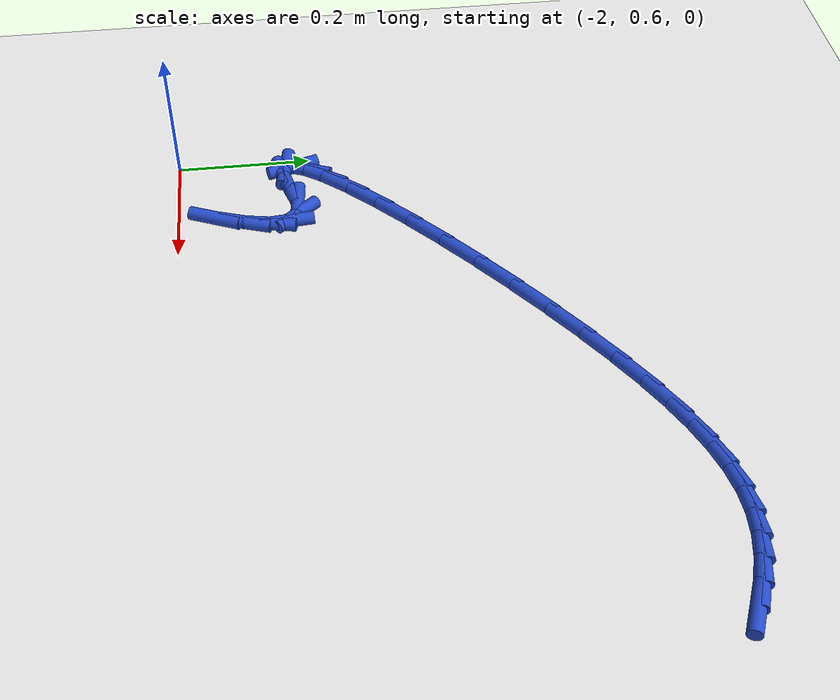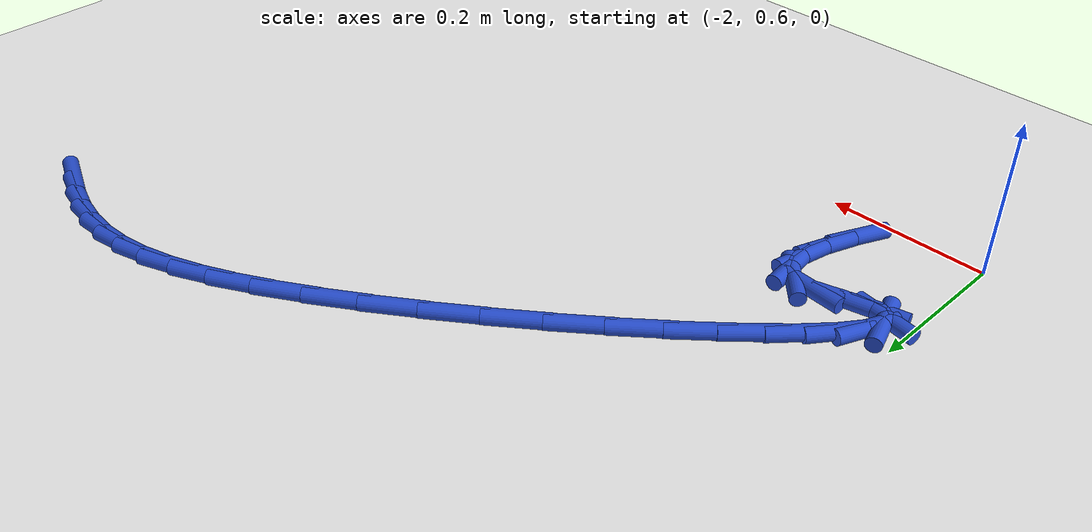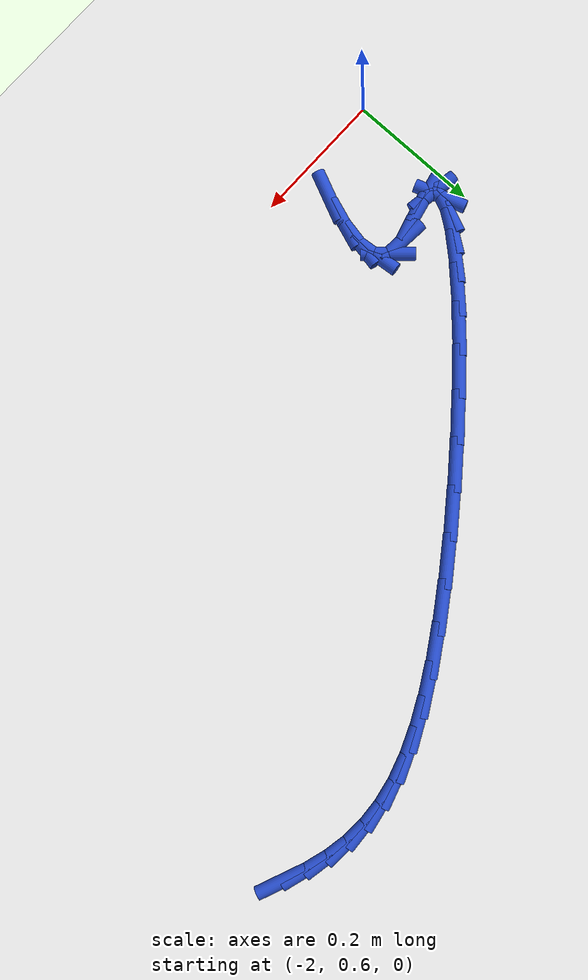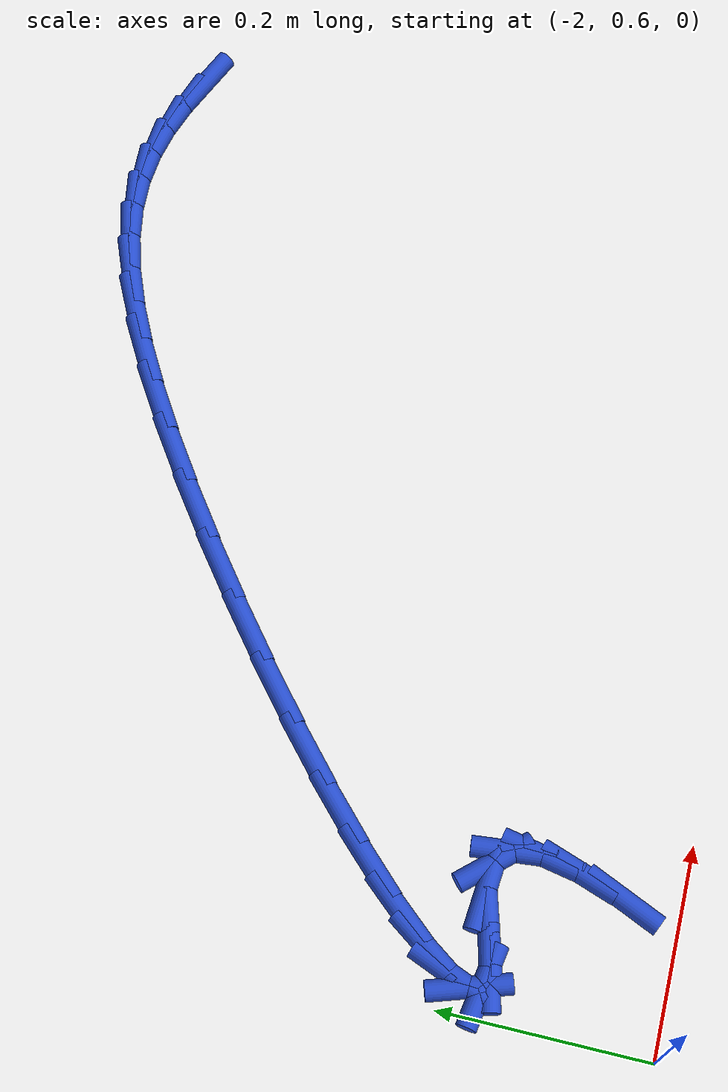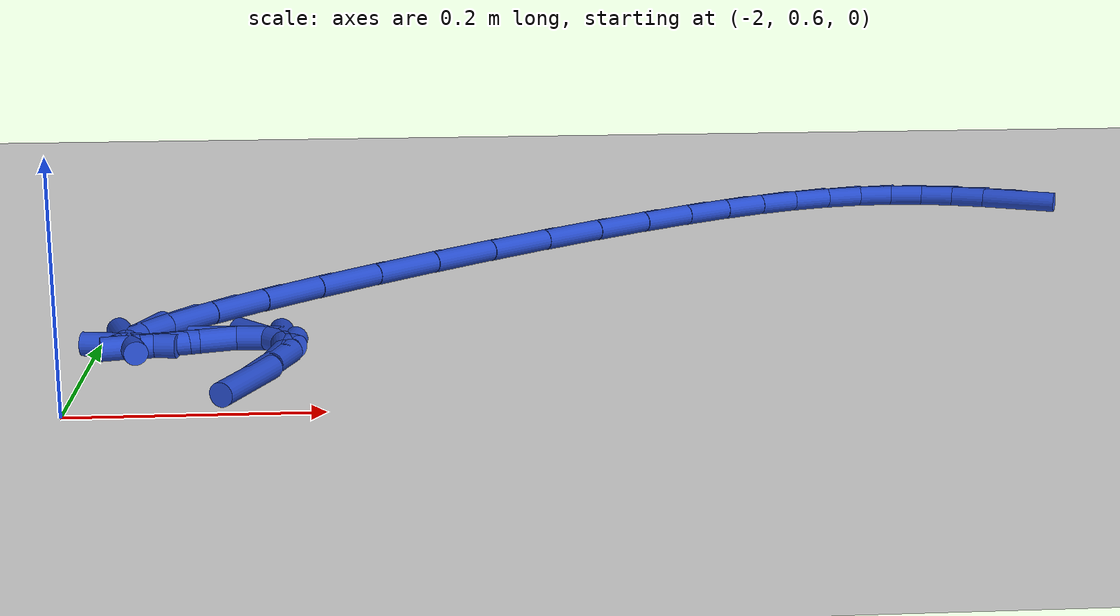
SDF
<sdf version="1.6">
 <world name="default">
  <model name="ground_plane">
   <static>1</static>
   <link name="link">
    <collision name="collision">
     <geometry><plane><normal>0 0 1</normal><size>100 100</size></plane></geometry>
     <surface><friction><ode><mu>100</mu><mu2>50</mu2></ode></friction></surface>
    </collision>
    <visual name="visual">
     <cast_shadows>0</cast_shadows>
     <geometry><plane><normal>0 0 1</normal><size>100 100</size></plane></geometry>
     <material>
      <script><uri>file://media/materials/scripts/gazebo.material</uri><name>Gazebo/WhiteGlow</name></script>
     </material>
    </visual>
   </link>
  </model>
  <model name="line">
   <link name="link_45">
    <pose>-1.1061907098270836 1.259216866242338 0.01 0 1.57 -0.39628411163745525</pose>
    <collision name="collision">
     <geometry><cylinder><radius>0.01</radius><length>0.08</length></cylinder></geometry>
    </collision>
    <visual name="visual">
     <material>
      <script><name>Gazebo/Blue</name><uri>file://media/materials/scripts/gazebo.material</uri></script>
     </material>
     <geometry><cylinder><radius>0.01</radius><length>0.08</length></cylinder></geometry>
    </visual>
   </link>
   <link name="link_46">
    <pose>-1.138700006761352 1.2728194046589345 0.01 0 1.57 -0.30576178670653814</pose>
    <collision name="collision">
     <geometry><cylinder><radius>0.01</radius><length>0.08</length></cylinder></geometry>
    </collision>
    <visual name="visual">
     <material>
      <script><name>Gazebo/Blue</name><uri>file://media/materials/scripts/gazebo.material</uri></script>
     </material>
     <geometry><cylinder><radius>0.01</radius><length>0.08</length></cylinder></geometry>
    </visual>
   </link>
   <link name="link_47">
    <pose>-1.171046481803519 1.283029916186119 0.01 0 1.57 -0.19584188359876759</pose>
    <collision name="collision">
     <geometry><cylinder><radius>0.01</radius><length>0.08</length></cylinder></geometry>
    </collision>
    <visual name="visual">
     <material>
      <script><name>Gazebo/Blue</name><uri>file://media/materials/scripts/gazebo.material</uri></script>
     </material>
     <geometry><cylinder><radius>0.01</radius><length>0.08</length></cylinder></geometry>
    </visual>
   </link>
   <link name="link_48">
    <pose>-1.2036302768191791 1.2894940418467087 0.01 0 1.57 -0.07102096939345529</pose>
    <collision name="collision">
     <geometry><cylinder><radius>0.01</radius><length>0.08</length></cylinder></geometry>
    </collision>
    <visual name="visual">
     <material>
      <script><name>Gazebo/Blue</name><uri>file://media/materials/scripts/gazebo.material</uri></script>
     </material>
     <geometry><cylinder><radius>0.01</radius><length>0.08</length></cylinder></geometry>
    </visual>
   </link>
   <link name="link_49">
    <pose>-1.2368515336739252 1.2918574226635209 0.01 0 1.57 0.060377551241556866</pose>
    <collision name="collision">
     <geometry><cylinder><radius>0.01</radius><length>0.08</length></cylinder></geometry>
    </collision>
    <visual name="visual">
     <material>
      <script><name>Gazebo/Blue</name><uri>file://media/materials/scripts/gazebo.material</uri></script>
     </material>
     <geometry><cylinder><radius>0.01</radius><length>0.08</length></cylinder></geometry>
    </visual>
   </link>
   <link name="link_50">
    <pose>-1.2711299392455209 1.2897852578723397 0.01 0 1.57 0.18586169663906224</pose>
    <collision name="collision">
     <geometry><cylinder><radius>0.01</radius><length>0.08</length></cylinder></geometry>
    </collision>
    <visual name="visual">
     <material>
      <script><name>Gazebo/Blue</name><uri>file://media/materials/scripts/gazebo.material</uri></script>
     </material>
     <geometry><cylinder><radius>0.01</radius><length>0.08</length></cylinder></geometry>
    </visual>
   </link>
   <link name="link_51">
    <pose>-1.3069856144628744 1.2830432485937502 0.01 0 1.57 0.2967230276497048</pose>
    <collision name="collision">
     <geometry><cylinder><radius>0.01</radius><length>0.08</length></cylinder></geometry>
    </collision>
    <visual name="visual">
     <material>
      <script><name>Gazebo/Blue</name><uri>file://media/materials/scripts/gazebo.material</uri></script>
     </material>
     <geometry><cylinder><radius>0.01</radius><length>0.08</length></cylinder></geometry>
    </visual>
   </link>
   <link name="link_52">
    <pose>-1.344970850641676 1.271429288063158 0.01 0 1.57 0.38940226054483024</pose>
    <collision name="collision">
     <geometry><cylinder><radius>0.01</radius><length>0.08</length></cylinder></geometry>
    </collision>
    <visual name="visual">
     <material>
      <script><name>Gazebo/Blue</name><uri>file://media/materials/scripts/gazebo.material</uri></script>
     </material>
     <geometry><cylinder><radius>0.01</radius><length>0.08</length></cylinder></geometry>
    </visual>
   </link>
   <link name="link_53">
    <pose>-1.3856379536845702 1.2547412841127752 0.01 0 1.57 0.46389361501096416</pose>
    <collision name="collision">
     <geometry><cylinder><radius>0.01</radius><length>0.08</length></cylinder></geometry>
    </collision>
    <visual name="visual">
     <material>
      <script><name>Gazebo/Blue</name><uri>file://media/materials/scripts/gazebo.material</uri></script>
     </material>
     <geometry><cylinder><radius>0.01</radius><length>0.08</length></cylinder></geometry>
    </visual>
   </link>
   <link name="link_54">
    <pose>-1.4295392294942042 1.232777144574816 0.01 0 1.57 0.5221629393950058</pose>
    <collision name="collision">
     <geometry><cylinder><radius>0.01</radius><length>0.08</length></cylinder></geometry>
    </collision>
    <visual name="visual">
     <material>
      <script><name>Gazebo/Blue</name><uri>file://media/materials/scripts/gazebo.material</uri></script>
     </material>
     <geometry><cylinder><radius>0.01</radius><length>0.08</length></cylinder></geometry>
    </visual>
   </link>
   <link name="link_55">
    <pose>-1.477218478422679 1.2053407212832972 0.01 0 1.57 0.5663556517284678</pose>
    <collision name="collision">
     <geometry><cylinder><radius>0.01</radius><length>0.08</length></cylinder></geometry>
    </collision>
    <visual name="visual">
     <material>
      <script><name>Gazebo/Blue</name><uri>file://media/materials/scripts/gazebo.material</uri></script>
     </material>
     <geometry><cylinder><radius>0.01</radius><length>0.08</length></cylinder></geometry>
    </visual>
   </link>
   <link name="link_56">
    <pose>-1.5285753410127025 1.172686029415513 0.01 0 1.57 0.6002599820687626</pose>
    <collision name="collision">
     <geometry><cylinder><radius>0.01</radius><length>0.08</length></cylinder></geometry>
    </collision>
    <visual name="visual">
     <material>
      <script><name>Gazebo/Blue</name><uri>file://media/materials/scripts/gazebo.material</uri></script>
     </material>
     <geometry><cylinder><radius>0.01</radius><length>0.08</length></cylinder></geometry>
    </visual>
   </link>
   <link name="link_57">
    <pose>-1.582425352896028 1.1358246978403594 0.01 0 1.57 0.6281293109742598</pose>
    <collision name="collision">
     <geometry><cylinder><radius>0.01</radius><length>0.08</length></cylinder></geometry>
    </collision>
    <visual name="visual">
     <material>
      <script><name>Gazebo/Blue</name><uri>file://media/materials/scripts/gazebo.material</uri></script>
     </material>
     <geometry><cylinder><radius>0.01</radius><length>0.08</length></cylinder></geometry>
    </visual>
   </link>
   <link name="link_58">
    <pose>-1.6374800096952948 1.0958410625370727 0.01 0 1.57 0.6526756990573416</pose>
    <collision name="collision">
     <geometry><cylinder><radius>0.01</radius><length>0.08</length></cylinder></geometry>
    </collision>
    <visual name="visual">
     <material>
      <script><name>Gazebo/Blue</name><uri>file://media/materials/scripts/gazebo.material</uri></script>
     </material>
     <geometry><cylinder><radius>0.01</radius><length>0.08</length></cylinder></geometry>
    </visual>
   </link>
   <link name="link_59">
    <pose>-1.6924508070331437 1.0538194594848875 0.01 0 1.57 0.6758376630225363</pose>
    <collision name="collision">
     <geometry><cylinder><radius>0.01</radius><length>0.08</length></cylinder></geometry>
    </collision>
    <visual name="visual">
     <material>
      <script><name>Gazebo/Blue</name><uri>file://media/materials/scripts/gazebo.material</uri></script>
     </material>
     <geometry><cylinder><radius>0.01</radius><length>0.08</length></cylinder></geometry>
    </visual>
   </link>
   <link name="link_60">
    <pose>-1.7460492405322146 1.010844224663038 0.01 0 1.57 0.699315268777566</pose>
    <collision name="collision">
     <geometry><cylinder><radius>0.01</radius><length>0.08</length></cylinder></geometry>
    </collision>
    <visual name="visual">
     <material>
      <script><name>Gazebo/Blue</name><uri>file://media/materials/scripts/gazebo.material</uri></script>
     </material>
     <geometry><cylinder><radius>0.01</radius><length>0.08</length></cylinder></geometry>
    </visual>
   </link>
   <link name="link_61">
    <pose>-1.7969868058151481 0.9679996940507596 0.01 0 1.57 0.7250018089480562</pose>
    <collision name="collision">
     <geometry><cylinder><radius>0.01</radius><length>0.08</length></cylinder></geometry>
    </collision>
    <visual name="visual">
     <material>
      <script><name>Gazebo/Blue</name><uri>file://media/materials/scripts/gazebo.material</uri></script>
     </material>
     <geometry><cylinder><radius>0.01</radius><length>0.08</length></cylinder></geometry>
    </visual>
   </link>
   <link name="link_62">
    <pose>-1.8439749985045846 0.9263702036272872 0.01 0 1.57 0.7555576327135555</pose>
    <collision name="collision">
     <geometry><cylinder><radius>0.01</radius><length>0.08</length></cylinder></geometry>
    </collision>
    <visual name="visual">
     <material>
      <script><name>Gazebo/Blue</name><uri>file://media/materials/scripts/gazebo.material</uri></script>
     </material>
     <geometry><cylinder><radius>0.01</radius><length>0.08</length></cylinder></geometry>
    </visual>
   </link>
   <link name="link_63">
    <pose>-1.885725314223164 0.8870400893718559 0.01 0 1.57 0.7955490627584391</pose>
    <collision name="collision">
     <geometry><cylinder><radius>0.01</radius><length>0.08</length></cylinder></geometry>
    </collision>
    <visual name="visual">
     <material>
      <script><name>Gazebo/Blue</name><uri>file://media/materials/scripts/gazebo.material</uri></script>
     </material>
     <geometry><cylinder><radius>0.01</radius><length>0.08</length></cylinder></geometry>
    </visual>
   </link>
   <link name="link_64">
    <pose>-1.9209492485935271 0.8510936872636999 0.01 0 1.57 0.8543916380553975</pose>
    <collision name="collision">
     <geometry><cylinder><radius>0.01</radius><length>0.08</length></cylinder></geometry>
    </collision>
    <visual name="visual">
     <material>
      <script><name>Gazebo/Blue</name><uri>file://media/materials/scripts/gazebo.material</uri></script>
     </material>
     <geometry><cylinder><radius>0.01</radius><length>0.08</length></cylinder></geometry>
    </visual>
   </link>
   <link name="link_65">
    <pose>-1.9483582972383129 0.8196153332820544 0.01 0 1.57 0.9560053380800748</pose>
    <collision name="collision">
     <geometry><cylinder><radius>0.01</radius><length>0.08</length></cylinder></geometry>
    </collision>
    <visual name="visual">
     <material>
      <script><name>Gazebo/Blue</name><uri>file://media/materials/scripts/gazebo.material</uri></script>
     </material>
     <geometry><cylinder><radius>0.01</radius><length>0.08</length></cylinder></geometry>
    </visual>
   </link>
   <link name="link_66">
    <pose>-1.9666639557801626 0.7936893634061546 0.01 0 1.57 1.1814695904706867</pose>
    <collision name="collision">
     <geometry><cylinder><radius>0.01</radius><length>0.08</length></cylinder></geometry>
    </collision>
    <visual name="visual">
     <material>
      <script><name>Gazebo/Blue</name><uri>file://media/materials/scripts/gazebo.material</uri></script>
     </material>
     <geometry><cylinder><radius>0.01</radius><length>0.08</length></cylinder></geometry>
    </visual>
   </link>
   <link name="link_67">
    <pose>-1.9745777198417165 0.7744001136152348 0.01 0 1.57 -1.2560194274398115</pose>
    <collision name="collision">
     <geometry><cylinder><radius>0.01</radius><length>0.08</length></cylinder></geometry>
    </collision>
    <visual name="visual">
     <material>
      <script><name>Gazebo/Blue</name><uri>file://media/materials/scripts/gazebo.material</uri></script>
     </material>
     <geometry><cylinder><radius>0.01</radius><length>0.08</length></cylinder></geometry>
    </visual>
   </link>
   <link name="link_68">
    <pose>-1.9708110850456144 0.7628319198885302 0.01 0 1.57 -0.16361025994916764</pose>
    <collision name="collision">
     <geometry><cylinder><radius>0.01</radius><length>0.08</length></cylinder></geometry>
    </collision>
    <visual name="visual">
     <material>
      <script><name>Gazebo/Blue</name><uri>file://media/materials/scripts/gazebo.material</uri></script>
     </material>
     <geometry><cylinder><radius>0.01</radius><length>0.08</length></cylinder></geometry>
    </visual>
   </link>
   <link name="link_69">
    <pose>-1.9540755470144975 0.7600691182052758 0.01 0 1.57 0.22602364938337452</pose>
    <collision name="collision">
     <geometry><cylinder><radius>0.01</radius><length>0.08</length></cylinder></geometry>
    </collision>
    <visual name="visual">
     <material>
      <script><name>Gazebo/Blue</name><uri>file://media/materials/scripts/gazebo.material</uri></script>
     </material>
     <geometry><cylinder><radius>0.01</radius><length>0.08</length></cylinder></geometry>
    </visual>
   </link>
   <link name="link_70">
    <pose>-1.9230826150090998 0.7671960326507054 0.01 0 1.57 0.27414914148554764</pose>
    <collision name="collision">
     <geometry><cylinder><radius>0.01</radius><length>0.08</length></cylinder></geometry>
    </collision>
    <visual name="visual">
     <material>
      <script><name>Gazebo/Blue</name><uri>file://media/materials/scripts/gazebo.material</uri></script>
     </material>
     <geometry><cylinder><radius>0.01</radius><length>0.08</length></cylinder></geometry>
    </visual>
   </link>
   <link name="link_71">
    <pose>-1.885038576773861 0.7778951667358499 0.01 0 1.57 -0.08783760356890888</pose>
    <collision name="collision">
     <geometry><cylinder><radius>0.01</radius><length>0.08</length></cylinder></geometry>
    </collision>
    <visual name="visual">
     <material>
      <script><name>Gazebo/Blue</name><uri>file://media/materials/scripts/gazebo.material</uri></script>
     </material>
     <geometry><cylinder><radius>0.01</radius><length>0.08</length></cylinder></geometry>
    </visual>
   </link>
   <link name="link_72">
    <pose>-1.8591171143976912 0.775612413759732 0.01 0 1.57 -0.8362716943564928</pose>
    <collision name="collision">
     <geometry><cylinder><radius>0.01</radius><length>0.08</length></cylinder></geometry>
    </collision>
    <visual name="visual">
     <material>
      <script><name>Gazebo/Blue</name><uri>file://media/materials/scripts/gazebo.material</uri></script>
     </material>
     <geometry><cylinder><radius>0.01</radius><length>0.08</length></cylinder></geometry>
    </visual>
   </link>
   <link name="link_73">
    <pose>-1.8455273477218208 0.7605644883926622 0.01 0 1.57 -1.4725328683632444</pose>
    <collision name="collision">
     <geometry><cylinder><radius>0.01</radius><length>0.08</length></cylinder></geometry>
    </collision>
    <visual name="visual">
     <material>
      <script><name>Gazebo/Blue</name><uri>file://media/materials/scripts/gazebo.material</uri></script>
     </material>
     <geometry><cylinder><radius>0.01</radius><length>0.08</length></cylinder></geometry>
    </visual>
   </link>
   <link name="link_74">
    <pose>-1.8429403707743583 0.734322330220575 0.01 0 1.57 1.3757123755140988</pose>
    <collision name="collision">
     <geometry><cylinder><radius>0.01</radius><length>0.08</length></cylinder></geometry>
    </collision>
    <visual name="visual">
     <material>
      <script><name>Gazebo/Blue</name><uri>file://media/materials/scripts/gazebo.material</uri></script>
     </material>
     <geometry><cylinder><radius>0.01</radius><length>0.08</length></cylinder></geometry>
    </visual>
   </link>
   <link name="link_75">
    <pose>-1.8500272775834126 0.6984568788294058 0.01 0 1.57 1.232891700476014</pose>
    <collision name="collision">
     <geometry><cylinder><radius>0.01</radius><length>0.08</length></cylinder></geometry>
    </collision>
    <visual name="visual">
     <material>
      <script><name>Gazebo/Blue</name><uri>file://media/materials/scripts/gazebo.material</uri></script>
     </material>
     <geometry><cylinder><radius>0.01</radius><length>0.08</length></cylinder></geometry>
    </visual>
   </link>
   <link name="link_76">
    <pose>-1.865459162177092 0.6545390738050901 0.01 0 1.57 1.1517719540767164</pose>
    <collision name="collision">
     <geometry><cylinder><radius>0.01</radius><length>0.08</length></cylinder></geometry>
    </collision>
    <visual name="visual">
     <material>
      <script><name>Gazebo/Blue</name><uri>file://media/materials/scripts/gazebo.material</uri></script>
     </material>
     <geometry><cylinder><radius>0.01</radius><length>0.08</length></cylinder></geometry>
    </visual>
   </link>
  </model>
 </world>
</sdf>
